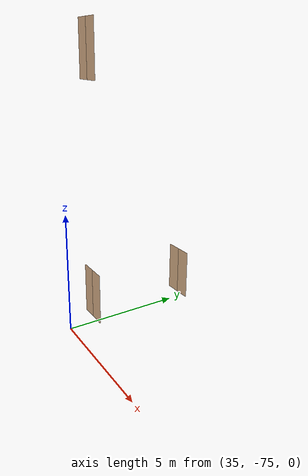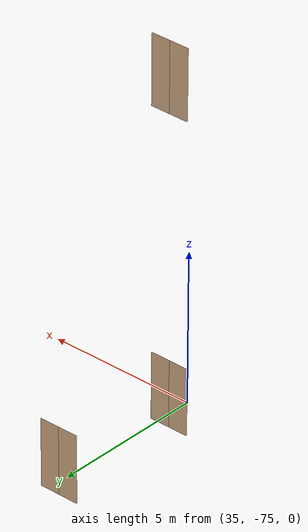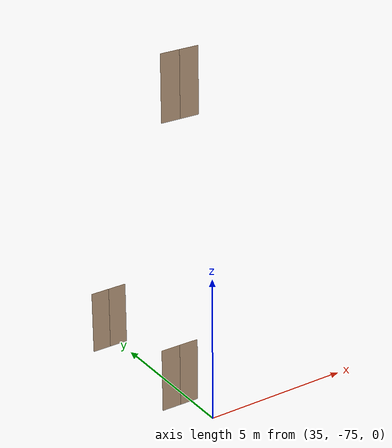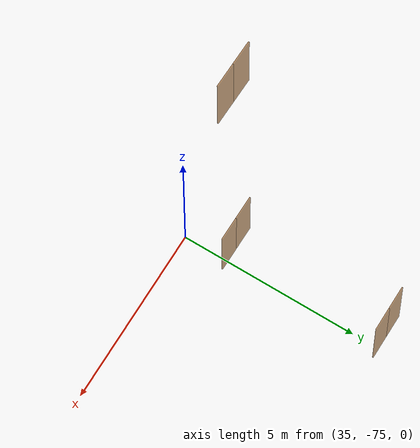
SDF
<sdf version="1.7">
 <world name="sim_world">
  <model name="door5">
   <pose>34.623163836947604 -69.26018157092108 0.0 0 0 -3.1335801828914733</pose>
   <link name="right">
    <pose>0.3255552930399749 0 1.11 0 0 0</pose>
    <visual name="right_visual">
     <geometry><box><size>0.6411105860799498 0.03 2.2</size></box></geometry>
     <material>
      <ambient>0.5 0.25 0 0.6</ambient>
      <diffuse>0.5 0.25 0 0.6</diffuse>
      <pbr><metal><metalness>0.0</metalness></metal></pbr>
     </material>
    </visual>
    <collision name="right_collision">
     <geometry><box><size>0.6411105860799498 0.03 2.2</size></box></geometry>
     <surface><contact><collide_bitmask>0x02</collide_bitmask></contact></surface>
    </collision>
    <inertial>
     <mass>50.0</mass>
     <inertia><ixx>20.17041666666667</ixx><iyy>21.87926159826574</iyy><izz>1.7163449315990695</izz></inertia>
    </inertial>
   </link>
   <joint name="right_joint" type="revolute">
    <parent>world</parent>
    <child>right</child>
    <axis><xyz>0 0 -1</xyz><limit><lower>0</lower><upper>1.57</upper></limit></axis>
    <pose>0.3255552930399749 0 0 0 0 0</pose>
   </joint>
   <link name="left">
    <pose>-0.3255552930399749 0 1.11 0 0 0</pose>
    <visual name="left_visual">
     <geometry><box><size>0.6411105860799498 0.03 2.2</size></box></geometry>
     <material>
      <ambient>0.5 0.25 0 0.6</ambient>
      <diffuse>0.5 0.25 0 0.6</diffuse>
      <pbr><metal><metalness>0.0</metalness></metal></pbr>
     </material>
    </visual>
    <collision name="left_collision">
     <geometry><box><size>0.6411105860799498 0.03 2.2</size></box></geometry>
     <surface><contact><collide_bitmask>0x02</collide_bitmask></contact></surface>
    </collision>
    <inertial>
     <mass>50.0</mass>
     <inertia><ixx>20.17041666666667</ixx><iyy>21.87926159826574</iyy><izz>1.7163449315990695</izz></inertia>
    </inertial>
   </link>
   <joint name="left_joint" type="revolute">
    <parent>world</parent>
    <child>left</child>
    <axis><xyz>0 0 -1</xyz><limit><lower>-1.57</lower><upper>0</upper></limit></axis>
    <pose>-0.3255552930399749 0 0 0 0 0</pose>
   </joint>
   <plugin name="register_component" filename="libregister_component.so">
    <component name="Door">
     <v_max_door>0.5</v_max_door>
     <a_max_door>0.3</a_max_door>
     <a_nom_door>0.15</a_nom_door>
     <dx_min_door>0.01</dx_min_door>
     <f_max_door>500.0</f_max_door>
     <ros_interface>true</ros_interface>
     <door name="door5" type="DoubleSwingDoor" left_joint_name="left_joint" right_joint_name="right_joint"/>
    </component>
   </plugin>
  </model>
  <model name="door1">
   <pose>34.58638434881824 -73.73664234402506 0.0 0 0 3.135840957718924</pose>
   <link name="right">
    <pose>0.3325787331740694 0 1.11 0 0 0</pose>
    <visual name="right_visual">
     <geometry><box><size>0.6551574663481388 0.03 2.2</size></box></geometry>
     <material>
      <ambient>0.5 0.25 0 0.6</ambient>
      <diffuse>0.5 0.25 0 0.6</diffuse>
      <pbr><metal><metalness>0.0</metalness></metal></pbr>
     </material>
    </visual>
    <collision name="right_collision">
     <geometry><box><size>0.6551574663481388 0.03 2.2</size></box></geometry>
     <surface><contact><collide_bitmask>0x02</collide_bitmask></contact></surface>
    </collision>
    <inertial>
     <mass>50.0</mass>
     <inertia><ixx>20.17041666666667</ixx><iyy>21.955130440465474</iyy><izz>1.7922137737988026</izz></inertia>
    </inertial>
   </link>
   <joint name="right_joint" type="revolute">
    <parent>world</parent>
    <child>right</child>
    <axis><xyz>0 0 1</xyz><limit><lower>0</lower><upper>1.57</upper></limit></axis>
    <pose>0.3325787331740694 0 0 0 0 0</pose>
   </joint>
   <link name="left">
    <pose>-0.3325787331740694 0 1.11 0 0 0</pose>
    <visual name="left_visual">
     <geometry><box><size>0.6551574663481388 0.03 2.2</size></box></geometry>
     <material>
      <ambient>0.5 0.25 0 0.6</ambient>
      <diffuse>0.5 0.25 0 0.6</diffuse>
      <pbr><metal><metalness>0.0</metalness></metal></pbr>
     </material>
    </visual>
    <collision name="left_collision">
     <geometry><box><size>0.6551574663481388 0.03 2.2</size></box></geometry>
     <surface><contact><collide_bitmask>0x02</collide_bitmask></contact></surface>
    </collision>
    <inertial>
     <mass>50.0</mass>
     <inertia><ixx>20.17041666666667</ixx><iyy>21.955130440465474</iyy><izz>1.7922137737988026</izz></inertia>
    </inertial>
   </link>
   <joint name="left_joint" type="revolute">
    <parent>world</parent>
    <child>left</child>
    <axis><xyz>0 0 1</xyz><limit><lower>-1.57</lower><upper>0</upper></limit></axis>
    <pose>-0.3325787331740694 0 0 0 0 0</pose>
   </joint>
   <plugin name="register_component" filename="libregister_component.so">
    <component name="Door">
     <v_max_door>0.5</v_max_door>
     <a_max_door>0.3</a_max_door>
     <a_nom_door>0.15</a_nom_door>
     <dx_min_door>0.01</dx_min_door>
     <f_max_door>500.0</f_max_door>
     <ros_interface>true</ros_interface>
     <door name="door1" type="DoubleSwingDoor" left_joint_name="left_joint" right_joint_name="right_joint"/>
    </component>
   </plugin>
  </model>
  <model name="N1_door1">
   <pose>34.693302458687725 -73.76318068442896 10.0 0 0 3.1172538458049273</pose>
   <link name="right">
    <pose>0.32443480926938967 0 1.11 0 0 0</pose>
    <visual name="right_visual">
     <geometry><box><size>0.6388696185387793 0.03 2.2</size></box></geometry>
     <material>
      <ambient>0.5 0.25 0 0.6</ambient>
      <diffuse>0.5 0.25 0 0.6</diffuse>
      <pbr><metal><metalness>0.0</metalness></metal></pbr>
     </material>
    </visual>
    <collision name="right_collision">
     <geometry><box><size>0.6388696185387793 0.03 2.2</size></box></geometry>
     <surface><contact><collide_bitmask>0x02</collide_bitmask></contact></surface>
    </collision>
    <inertial>
     <mass>50.0</mass>
     <inertia><ixx>20.17041666666667</ixx><iyy>21.867309956216193</iyy><izz>1.7043932895495228</izz></inertia>
    </inertial>
   </link>
   <joint name="right_joint" type="revolute">
    <parent>world</parent>
    <child>right</child>
    <axis><xyz>0 0 1</xyz><limit><lower>0</lower><upper>1.57</upper></limit></axis>
    <pose>0.32443480926938967 0 0 0 0 0</pose>
   </joint>
   <link name="left">
    <pose>-0.32443480926938967 0 1.11 0 0 0</pose>
    <visual name="left_visual">
     <geometry><box><size>0.6388696185387793 0.03 2.2</size></box></geometry>
     <material>
      <ambient>0.5 0.25 0 0.6</ambient>
      <diffuse>0.5 0.25 0 0.6</diffuse>
      <pbr><metal><metalness>0.0</metalness></metal></pbr>
     </material>
    </visual>
    <collision name="left_collision">
     <geometry><box><size>0.6388696185387793 0.03 2.2</size></box></geometry>
     <surface><contact><collide_bitmask>0x02</collide_bitmask></contact></surface>
    </collision>
    <inertial>
     <mass>50.0</mass>
     <inertia><ixx>20.17041666666667</ixx><iyy>21.867309956216193</iyy><izz>1.7043932895495228</izz></inertia>
    </inertial>
   </link>
   <joint name="left_joint" type="revolute">
    <parent>world</parent>
    <child>left</child>
    <axis><xyz>0 0 1</xyz><limit><lower>-1.57</lower><upper>0</upper></limit></axis>
    <pose>-0.32443480926938967 0 0 0 0 0</pose>
   </joint>
   <plugin name="register_component" filename="libregister_component.so">
    <component name="Door">
     <v_max_door>0.5</v_max_door>
     <a_max_door>0.3</a_max_door>
     <a_nom_door>0.15</a_nom_door>
     <dx_min_door>0.01</dx_min_door>
     <f_max_door>500.0</f_max_door>
     <ros_interface>true</ros_interface>
     <door name="N1_door1" type="DoubleSwingDoor" left_joint_name="left_joint" right_joint_name="right_joint"/>
    </component>
   </plugin>
  </model>
 </world>
</sdf>
